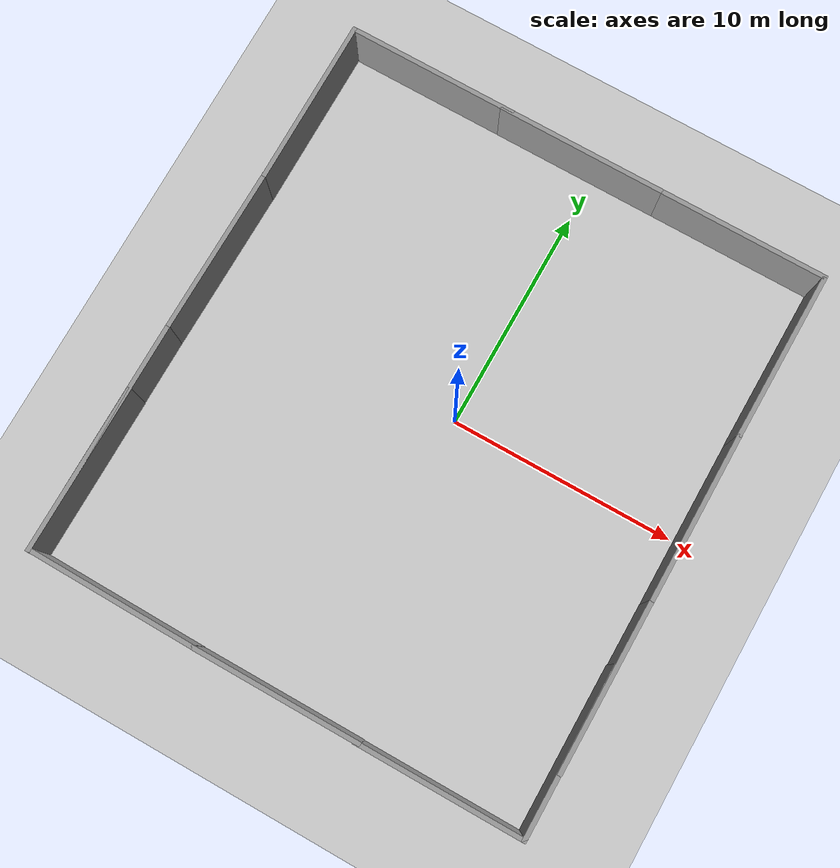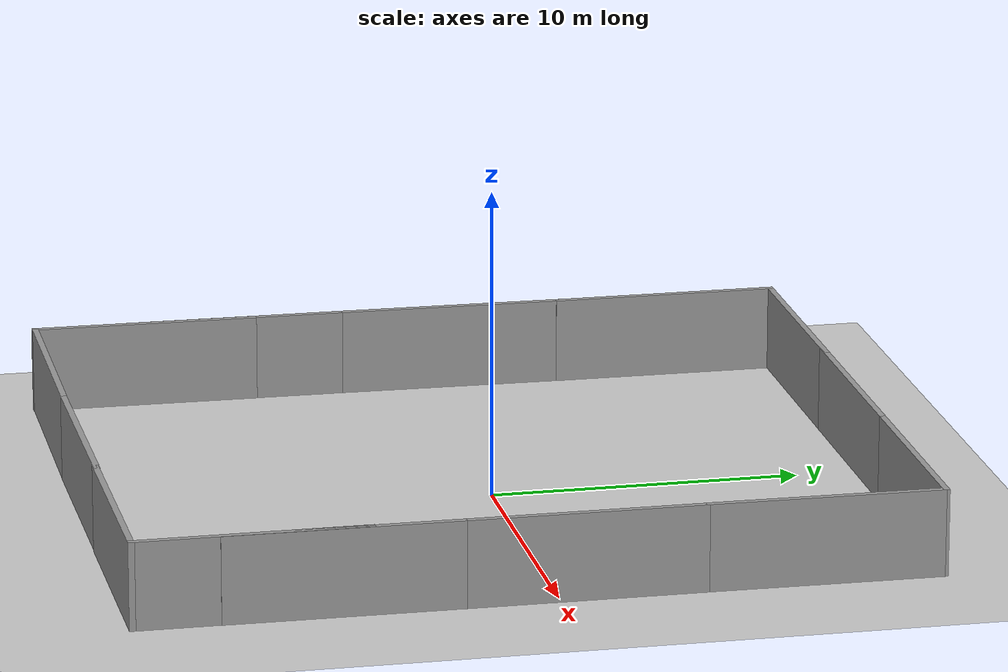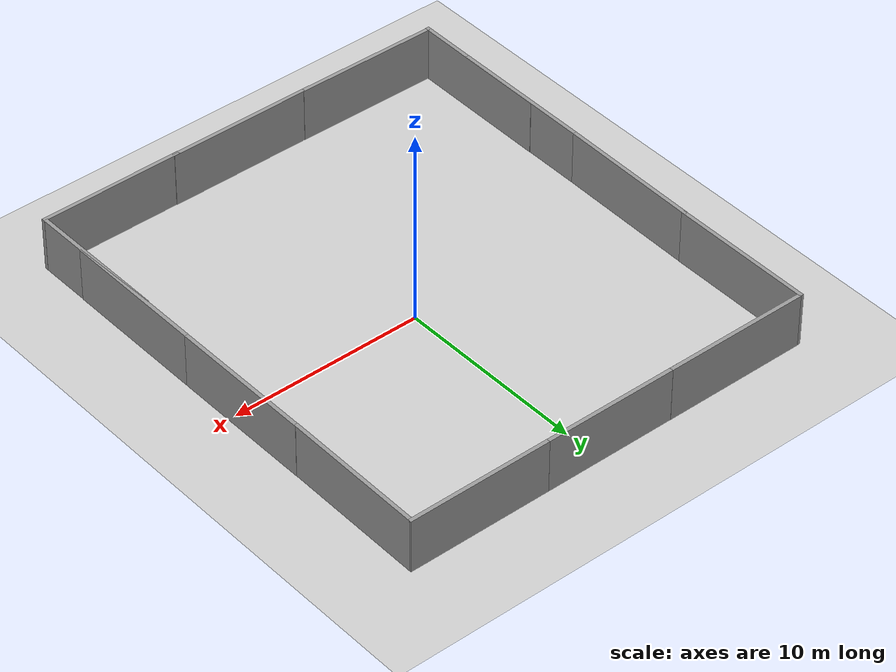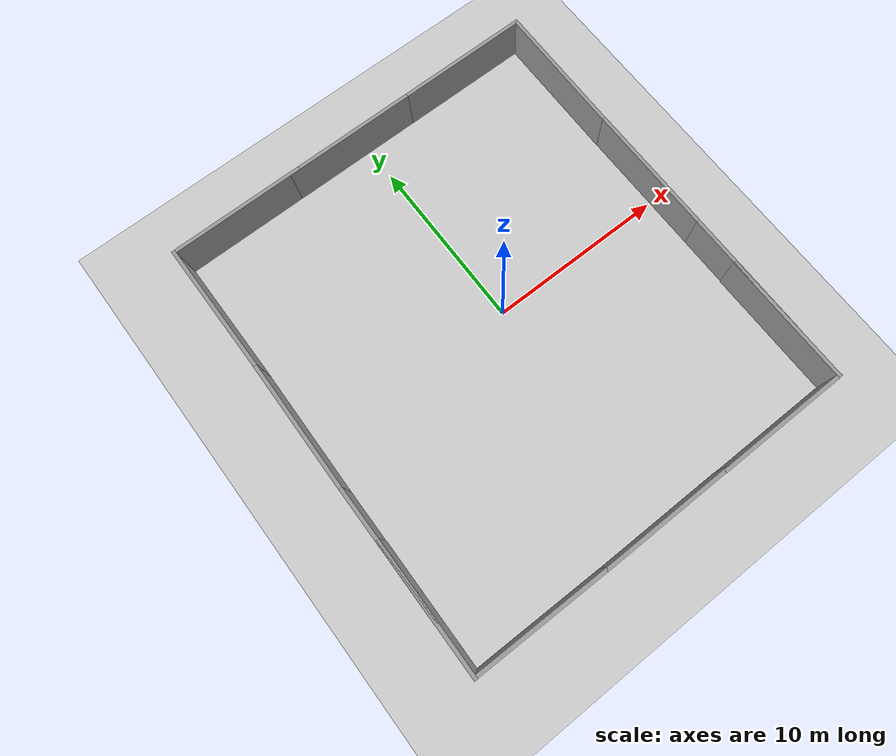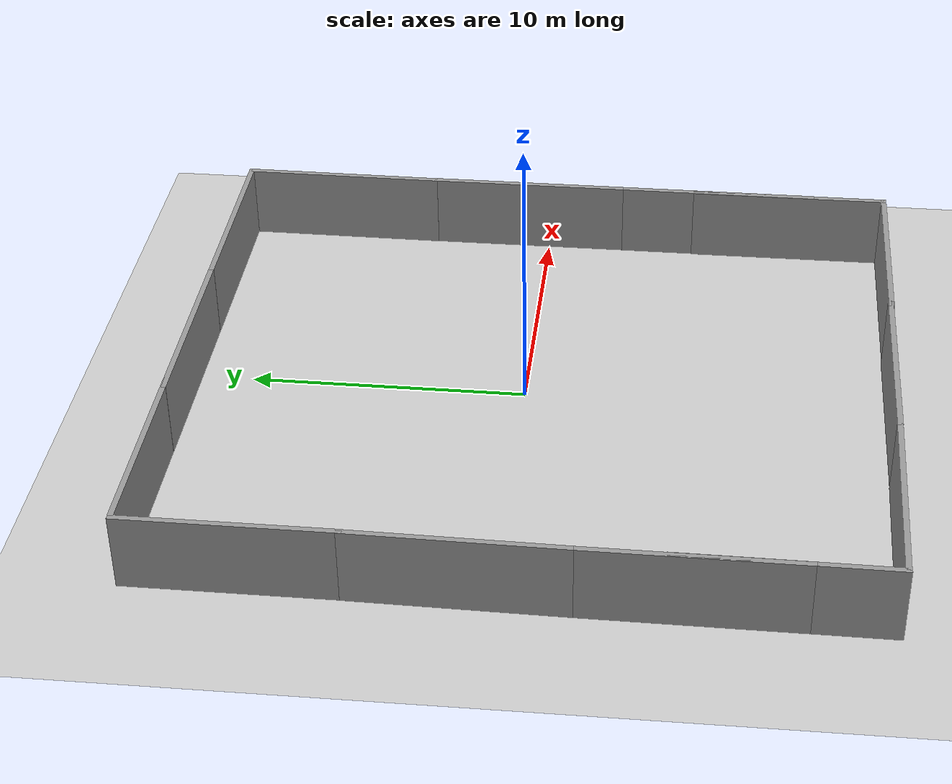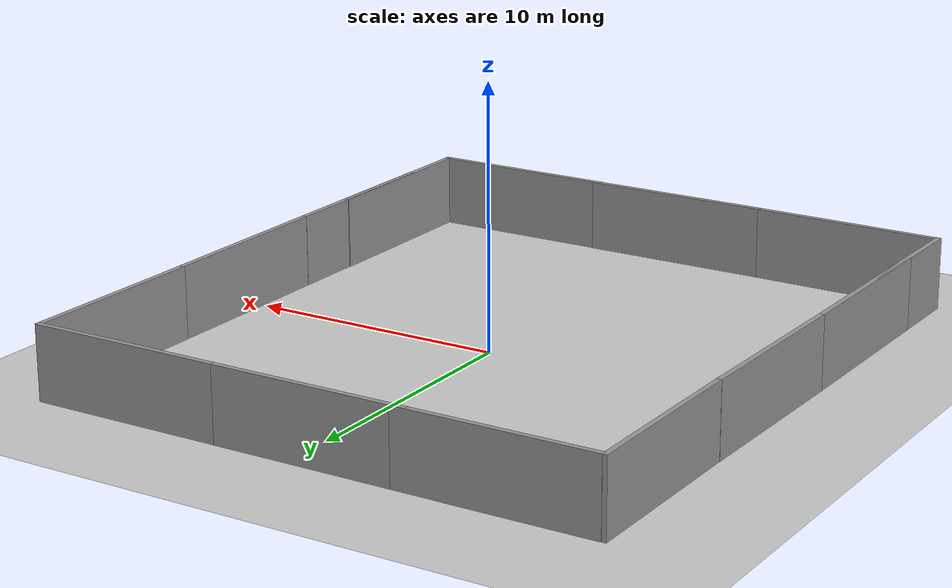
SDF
<sdf version="1.7">
 <world name="default">
  <light name="sun" type="directional">
   <pose>0 0 10 0 -0 0</pose>
   <diffuse>0.8 0.8 0.8 1</diffuse>
   <specular>0.2 0.2 0.2 1</specular>
   <attenuation>
    <range>1000</range>
    <constant>0.9</constant>
    <linear>0.01</linear>
    <quadratic>0.001</quadratic>
   </attenuation>
   <direction>-0.5 0.1 -0.9</direction>
   <spot><inner_angle>0</inner_angle><outer_angle>0</outer_angle><falloff>0</falloff></spot>
  </light>
  <model name="ground_plane">
   <static>1</static>
   <link name="link">
    <collision name="collision">
     <geometry><plane><normal>0 0 1</normal><size>100 100</size></plane></geometry>
     <surface><friction><ode><mu>100</mu><mu2>50</mu2></ode></friction></surface>
    </collision>
    <visual name="visual">
     <cast_shadows>0</cast_shadows>
     <geometry><plane><normal>0 0 1</normal><size>100 100</size></plane></geometry>
     <material>
      <script><uri>file://media/materials/scripts/gazebo.material</uri><name>Gazebo/Grey</name></script>
     </material>
    </visual>
   </link>
  </model>
  <gravity>0 0 -9.8</gravity>
  <magnetic_field>6e-06 2.3e-05 -4.2e-05</magnetic_field>
  <atmosphere type="adiabatic"/>
  <physics name="default_physics" default="0" type="ode">
   <max_step_size>0.001</max_step_size>
   <real_time_factor>1</real_time_factor>
   <real_time_update_rate>1000</real_time_update_rate>
  </physics>
  <scene><ambient>0.4 0.4 0.4 1</ambient><background>0.7 0.7 0.7 1</background><shadows>1</shadows></scene>
  <audio><device>default</device></audio>
  <spherical_coordinates>
   <surface_model>EARTH_WGS84</surface_model>
   <latitude_deg>0</latitude_deg>
   <longitude_deg>0</longitude_deg>
   <elevation>0</elevation>
   <heading_deg>0</heading_deg>
  </spherical_coordinates>
  <model name="grey_wall">
   <static>1</static>
   <link name="link">
    <pose>0 0 1.4 0 -0 0</pose>
    <collision name="collision"><geometry><box><size>7.5 0.2 2.8</size></box></geometry></collision>
    <visual name="visual">
     <cast_shadows>0</cast_shadows>
     <geometry><box><size>7.5 0.2 2.8</size></box></geometry>
     <material>
      <script>
       <uri>model://grey_wall/materials/scripts</uri>
       <uri>model://grey_wall/materials/textures</uri>
       <name>vrc/grey_wall</name>
      </script>
     </material>
    </visual>
   </link>
   <pose>10.2638 -6.64674 0 0 0 -1.57196</pose>
  </model>
  <model name="grey_wall_0">
   <static>1</static>
   <link name="link">
    <pose>0 0 1.4 0 -0 0</pose>
    <collision name="collision"><geometry><box><size>7.5 0.2 2.8</size></box></geometry></collision>
    <visual name="visual">
     <cast_shadows>0</cast_shadows>
     <geometry><box><size>7.5 0.2 2.8</size></box></geometry>
     <material>
      <script>
       <uri>model://grey_wall/materials/scripts</uri>
       <uri>model://grey_wall/materials/textures</uri>
       <name>vrc/grey_wall</name>
      </script>
     </material>
    </visual>
   </link>
   <pose>10.2695 0.852253 0 0 0 -1.57037</pose>
  </model>
  <model name="grey_wall_1">
   <static>1</static>
   <link name="link">
    <pose>0 0 1.4 0 -0 0</pose>
    <collision name="collision"><geometry><box><size>7.5 0.2 2.8</size></box></geometry></collision>
    <visual name="visual">
     <cast_shadows>0</cast_shadows>
     <geometry><box><size>7.5 0.2 2.8</size></box></geometry>
     <material>
      <script>
       <uri>model://grey_wall/materials/scripts</uri>
       <uri>model://grey_wall/materials/textures</uri>
       <name>vrc/grey_wall</name>
      </script>
     </material>
    </visual>
   </link>
   <pose>10.2882 8.25398 0 0 0 -1.57883</pose>
  </model>
  <model name="grey_wall_2">
   <static>1</static>
   <link name="link">
    <pose>0 0 1.4 0 -0 0</pose>
    <collision name="collision"><geometry><box><size>7.5 0.2 2.8</size></box></geometry></collision>
    <visual name="visual">
     <cast_shadows>0</cast_shadows>
     <geometry><box><size>7.5 0.2 2.8</size></box></geometry>
     <material>
      <script>
       <uri>model://grey_wall/materials/scripts</uri>
       <uri>model://grey_wall/materials/textures</uri>
       <name>vrc/grey_wall</name>
      </script>
     </material>
    </visual>
   </link>
   <pose>6.66676 12.0011 0 0 -0 0</pose>
  </model>
  <model name="grey_wall_3">
   <static>1</static>
   <link name="link">
    <pose>0 0 1.4 0 -0 0</pose>
    <collision name="collision"><geometry><box><size>7.5 0.2 2.8</size></box></geometry></collision>
    <visual name="visual">
     <cast_shadows>0</cast_shadows>
     <geometry><box><size>7.5 0.2 2.8</size></box></geometry>
     <material>
      <script>
       <uri>model://grey_wall/materials/scripts</uri>
       <uri>model://grey_wall/materials/textures</uri>
       <name>vrc/grey_wall</name>
      </script>
     </material>
    </visual>
   </link>
   <pose>-0.817959 12.0027 0 0 -0 0</pose>
  </model>
  <model name="grey_wall_4">
   <static>1</static>
   <link name="link">
    <pose>0 0 1.4 0 -0 0</pose>
    <collision name="collision"><geometry><box><size>7.5 0.2 2.8</size></box></geometry></collision>
    <visual name="visual">
     <cast_shadows>0</cast_shadows>
     <geometry><box><size>7.5 0.2 2.8</size></box></geometry>
     <material>
      <script>
       <uri>model://grey_wall/materials/scripts</uri>
       <uri>model://grey_wall/materials/textures</uri>
       <name>vrc/grey_wall</name>
      </script>
     </material>
    </visual>
   </link>
   <pose>-11.7087 -6.43749 0 0 0 -1.57736</pose>
  </model>
  <model name="grey_wall_5">
   <static>1</static>
   <link name="link">
    <pose>0 0 1.4 0 -0 0</pose>
    <collision name="collision"><geometry><box><size>7.5 0.2 2.8</size></box></geometry></collision>
    <visual name="visual">
     <cast_shadows>0</cast_shadows>
     <geometry><box><size>7.5 0.2 2.8</size></box></geometry>
     <material>
      <script>
       <uri>model://grey_wall/materials/scripts</uri>
       <uri>model://grey_wall/materials/textures</uri>
       <name>vrc/grey_wall</name>
      </script>
     </material>
    </visual>
   </link>
   <pose>-7.73211 12.0071 0 0 -0 0</pose>
  </model>
  <model name="grey_wall_6">
   <static>1</static>
   <link name="link">
    <pose>0 0 1.4 0 -0 0</pose>
    <collision name="collision"><geometry><box><size>7.5 0.2 2.8</size></box></geometry></collision>
    <visual name="visual">
     <cast_shadows>0</cast_shadows>
     <geometry><box><size>7.5 0.2 2.8</size></box></geometry>
     <material>
      <script>
       <uri>model://grey_wall/materials/scripts</uri>
       <uri>model://grey_wall/materials/textures</uri>
       <name>vrc/grey_wall</name>
      </script>
     </material>
    </visual>
   </link>
   <pose>-11.6272 1.04852 0 0 -0 1.55549</pose>
  </model>
  <model name="grey_wall_7">
   <static>1</static>
   <link name="link">
    <pose>0 0 1.4 0 -0 0</pose>
    <collision name="collision"><geometry><box><size>7.5 0.2 2.8</size></box></geometry></collision>
    <visual name="visual">
     <cast_shadows>0</cast_shadows>
     <geometry><box><size>7.5 0.2 2.8</size></box></geometry>
     <material>
      <script>
       <uri>model://grey_wall/materials/scripts</uri>
       <uri>model://grey_wall/materials/textures</uri>
       <name>vrc/grey_wall</name>
      </script>
     </material>
    </visual>
   </link>
   <pose>-11.5574 8.34556 0 0 0 -1.57274</pose>
  </model>
  <model name="grey_wall_8">
   <static>1</static>
   <link name="link">
    <pose>0 0 1.4 0 -0 0</pose>
    <collision name="collision"><geometry><box><size>7.5 0.2 2.8</size></box></geometry></collision>
    <visual name="visual">
     <cast_shadows>0</cast_shadows>
     <geometry><box><size>7.5 0.2 2.8</size></box></geometry>
     <material>
      <script>
       <uri>model://grey_wall/materials/scripts</uri>
       <uri>model://grey_wall/materials/textures</uri>
       <name>vrc/grey_wall</name>
      </script>
     </material>
    </visual>
   </link>
   <pose>-8.01392 -13.0197 0 0 0 -0.011272</pose>
  </model>
  <model name="grey_wall_9">
   <static>1</static>
   <link name="link">
    <pose>0 0 1.4 0 -0 0</pose>
    <collision name="collision"><geometry><box><size>7.5 0.2 2.8</size></box></geometry></collision>
    <visual name="visual">
     <cast_shadows>0</cast_shadows>
     <geometry><box><size>7.5 0.2 2.8</size></box></geometry>
     <material>
      <script>
       <uri>model://grey_wall/materials/scripts</uri>
       <uri>model://grey_wall/materials/textures</uri>
       <name>vrc/grey_wall</name>
      </script>
     </material>
    </visual>
   </link>
   <pose>-0.585563 -13.0699 0 0 -0 0</pose>
  </model>
  <model name="grey_wall_10">
   <static>1</static>
   <link name="link">
    <pose>0 0 1.4 0 -0 0</pose>
    <collision name="collision"><geometry><box><size>7.5 0.2 2.8</size></box></geometry></collision>
    <visual name="visual">
     <cast_shadows>0</cast_shadows>
     <geometry><box><size>7.5 0.2 2.8</size></box></geometry>
     <material>
      <script>
       <uri>model://grey_wall/materials/scripts</uri>
       <uri>model://grey_wall/materials/textures</uri>
       <name>vrc/grey_wall</name>
      </script>
     </material>
    </visual>
   </link>
   <pose>6.60285 -13.0916 0 0 -0 0</pose>
  </model>
  <model name="grey_wall_11">
   <static>1</static>
   <link name="link">
    <pose>0 0 1.4 0 -0 0</pose>
    <collision name="collision"><geometry><box><size>7.5 0.2 2.8</size></box></geometry></collision>
    <visual name="visual">
     <cast_shadows>0</cast_shadows>
     <geometry><box><size>7.5 0.2 2.8</size></box></geometry>
     <material>
      <script>
       <uri>model://grey_wall/materials/scripts</uri>
       <uri>model://grey_wall/materials/textures</uri>
       <name>vrc/grey_wall</name>
      </script>
     </material>
    </visual>
   </link>
   <pose>-11.7208 -9.33961 0 0 0 -1.57924</pose>
  </model>
  <model name="grey_wall_12">
   <static>1</static>
   <link name="link">
    <pose>0 0 1.4 0 -0 0</pose>
    <collision name="collision"><geometry><box><size>7.5 0.2 2.8</size></box></geometry></collision>
    <visual name="visual">
     <cast_shadows>0</cast_shadows>
     <geometry><box><size>7.5 0.2 2.8</size></box></geometry>
     <material>
      <script>
       <uri>model://grey_wall/materials/scripts</uri>
       <uri>model://grey_wall/materials/textures</uri>
       <name>vrc/grey_wall</name>
      </script>
     </material>
    </visual>
   </link>
   <pose>10.2433 -9.4309 0 0 0 -1.56881</pose>
  </model>
 </world>
</sdf>
